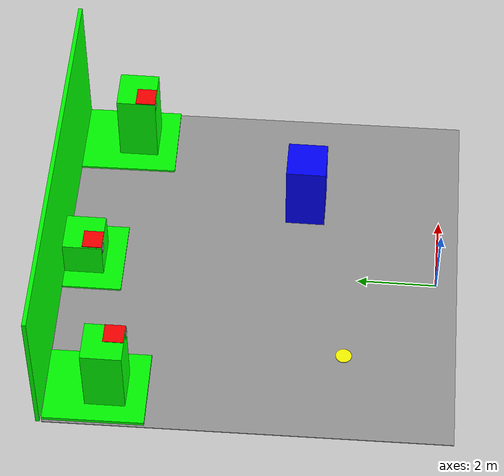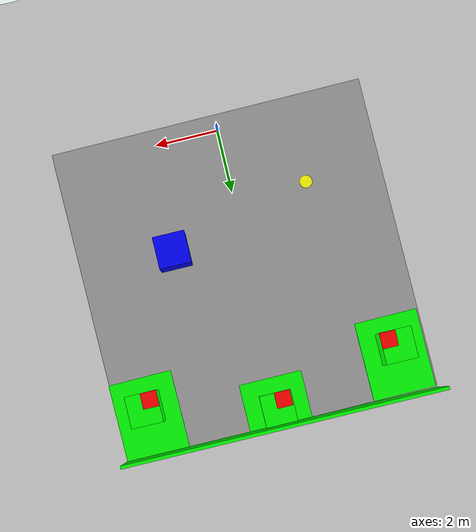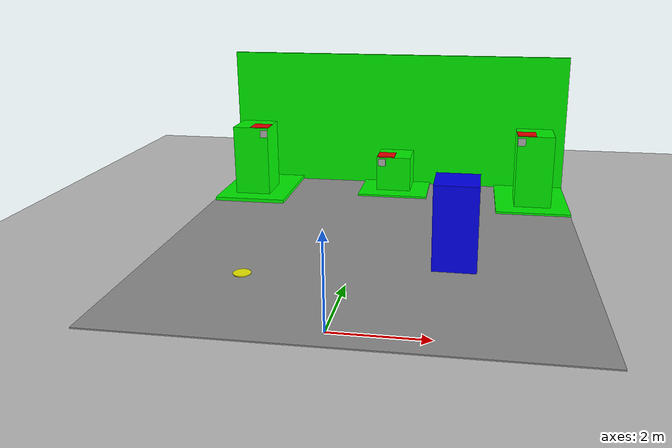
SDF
<sdf version="1.7">
 <world name="default">
  <light name="sun" type="directional">
   <pose>0 0 10 0 -0 0</pose>
   <diffuse>0.8 0.8 0.8 1</diffuse>
   <specular>0.2 0.2 0.2 1</specular>
   <attenuation>
    <range>1000</range>
    <constant>0.9</constant>
    <linear>0.01</linear>
    <quadratic>0.001</quadratic>
   </attenuation>
   <direction>-0.5 0.1 -0.9</direction>
   <spot><inner_angle>0</inner_angle><outer_angle>0</outer_angle><falloff>0</falloff></spot>
  </light>
  <model name="ground_plane">
   <static>1</static>
   <link name="link">
    <collision name="collision">
     <geometry><plane><normal>0 0 1</normal><size>100 100</size></plane></geometry>
     <surface>
      <contact><collide_bitmask>65535</collide_bitmask></contact>
      <friction><ode><mu>100</mu><mu2>50</mu2></ode></friction>
     </surface>
    </collision>
    <visual name="visual">
     <cast_shadows>0</cast_shadows>
     <geometry><plane><normal>0 0 1</normal><size>100 100</size></plane></geometry>
     <material>
      <script><uri>file://media/materials/scripts/gazebo.material</uri><name>Gazebo/Grey</name></script>
     </material>
    </visual>
   </link>
  </model>
  <gravity>0 0 -9.8</gravity>
  <magnetic_field>6e-06 2.3e-05 -4.2e-05</magnetic_field>
  <atmosphere type="adiabatic"/>
  <physics type="ode">
   <max_step_size>0.001</max_step_size>
   <real_time_factor>1</real_time_factor>
   <real_time_update_rate>1000</real_time_update_rate>
  </physics>
  <scene><ambient>0.4 0.4 0.4 1</ambient><background>0.7 0.7 0.7 1</background><shadows>1</shadows></scene>
  <spherical_coordinates>
   <surface_model>EARTH_WGS84</surface_model>
   <latitude_deg>0</latitude_deg>
   <longitude_deg>0</longitude_deg>
   <elevation>0</elevation>
   <heading_deg>0</heading_deg>
  </spherical_coordinates>
  <model name="ABC">
   <link name="link">
    <inertial>
     <mass>1</mass>
     <inertia>
      <ixx>0.166667</ixx>
      <ixy>0</ixy>
      <ixz>0</ixz>
      <iyy>0.166667</iyy>
      <iyz>0</iyz>
      <izz>0.166667</izz>
     </inertia>
    </inertial>
    <pose>0.501756 -0.490715 -0.481377 0 -0 0.009708</pose>
    <gravity>0</gravity>
    <visual name="visual">
     <geometry><box><size>2 2.5 0.1</size></box></geometry>
     <material>
      <script><name>Gazebo/Grey</name><uri>file://media/materials/scripts/gazebo.material</uri></script>
      <shader type="pixel"><normal_map>__default__</normal_map></shader>
      <ambient>0 1 0 1</ambient>
      <diffuse>0 1 0 1</diffuse>
      <specular>0 1 0 1</specular>
      <emissive>0 1 0 1</emissive>
     </material>
    </visual>
   </link>
   <link name="link_clone">
    <inertial>
     <mass>1</mass>
     <inertia>
      <ixx>0.166667</ixx>
      <ixy>0</ixy>
      <ixz>0</ixz>
      <iyy>0.166667</iyy>
      <iyz>0</iyz>
      <izz>0.166667</izz>
     </inertia>
    </inertial>
    <pose>0.464724 -0.746721 0.530209 0 -0 0</pose>
    <gravity>0</gravity>
    <visual name="visual">
     <geometry><box><size>1 1 2</size></box></geometry>
     <material>
      <script><name>Gazebo/Grey</name><uri>file://media/materials/scripts/gazebo.material</uri></script>
      <shader type="pixel"><normal_map>__default__</normal_map></shader>
      <ambient>0 1 0 1</ambient>
      <diffuse>0 1 0 1</diffuse>
      <specular>0 1 0 1</specular>
      <emissive>0 1 0 1</emissive>
     </material>
    </visual>
   </link>
   <link name="link_clone_0">
    <inertial>
     <mass>1</mass>
     <inertia>
      <ixx>0.166667</ixx>
      <ixy>0</ixy>
      <ixz>0</ixz>
      <iyy>0.166667</iyy>
      <iyz>0</iyz>
      <izz>0.166667</izz>
     </inertia>
    </inertial>
    <pose>4.48643 -4.20216 -0.554871 0 -0 0.009708</pose>
    <gravity>0</gravity>
    <visual name="visual">
     <geometry><box><size>10 10 0.05</size></box></geometry>
     <material>
      <script><name>Gazebo/Grey</name><uri>file://media/materials/scripts/gazebo.material</uri></script>
      <shader type="pixel"><normal_map>__default__</normal_map></shader>
      <ambient>0.3 0.3 0.3 1</ambient>
      <diffuse>0.3 0.3 0.3 1</diffuse>
      <specular>0.3 0.3 0.3 1</specular>
      <emissive>0.3 0.3 0.3 1</emissive>
     </material>
    </visual>
   </link>
   <link name="link_clone_clone">
    <inertial>
     <mass>1</mass>
     <inertia>
      <ixx>0.166667</ixx>
      <ixy>0</ixy>
      <ixz>0</ixz>
      <iyy>0.166667</iyy>
      <iyz>0</iyz>
      <izz>0.166667</izz>
     </inertia>
    </inertial>
    <pose>4.4894 0.039701 -0.525972 0 0 -3.13825</pose>
    <gravity>0</gravity>
    <visual name="visual">
     <geometry><box><size>2 1.5 0.1</size></box></geometry>
     <material>
      <script><name>Gazebo/Grey</name><uri>file://media/materials/scripts/gazebo.material</uri></script>
      <shader type="pixel"><normal_map>__default__</normal_map></shader>
      <ambient>0 1 0 1</ambient>
      <diffuse>0 1 0 1</diffuse>
      <specular>0 1 0 1</specular>
      <emissive>0 1 0 1</emissive>
     </material>
    </visual>
   </link>
   <link name="link_clone_clone_0">
    <inertial>
     <mass>1</mass>
     <inertia>
      <ixx>0.166667</ixx>
      <ixy>0</ixy>
      <ixz>0</ixz>
      <iyy>0.166667</iyy>
      <iyz>0</iyz>
      <izz>0.166667</izz>
     </inertia>
    </inertial>
    <pose>8.45528 -0.414778 -0.521977 0 0 -1.55734</pose>
    <gravity>0</gravity>
    <visual name="visual">
     <geometry><box><size>2.5 2 0.1</size></box></geometry>
     <material>
      <script><name>Gazebo/Grey</name><uri>file://media/materials/scripts/gazebo.material</uri></script>
      <shader type="pixel"><normal_map>__default__</normal_map></shader>
      <ambient>0 1 0 1</ambient>
      <diffuse>0 1 0 1</diffuse>
      <specular>0 1 0 1</specular>
      <emissive>0 1 0 1</emissive>
     </material>
    </visual>
   </link>
   <link name="link_clone_clone_1">
    <inertial>
     <mass>1</mass>
     <inertia>
      <ixx>0.166667</ixx>
      <ixy>0</ixy>
      <ixz>0</ixz>
      <iyy>0.166667</iyy>
      <iyz>0</iyz>
      <izz>0.166667</izz>
     </inertia>
    </inertial>
    <pose>4.45058 0.836556 1.43228 0 -0 0</pose>
    <gravity>0</gravity>
    <visual name="visual">
     <geometry><box><size>10 0.1 4</size></box></geometry>
     <material>
      <script><name>Gazebo/Grey</name><uri>file://media/materials/scripts/gazebo.material</uri></script>
      <shader type="pixel"><normal_map>__default__</normal_map></shader>
      <ambient>0 1 0 1</ambient>
      <diffuse>0 1 0 1</diffuse>
      <specular>0 1 0 1</specular>
      <emissive>0 1 0 1</emissive>
     </material>
    </visual>
   </link>
   <link name="link_clone_clone_2">
    <inertial>
     <mass>1</mass>
     <inertia>
      <ixx>0.166667</ixx>
      <ixy>0</ixy>
      <ixz>0</ixz>
      <iyy>0.166667</iyy>
      <iyz>0</iyz>
      <izz>0.166667</izz>
     </inertia>
    </inertial>
    <pose>4.46769 0.278083 0.030316 0 -0 0</pose>
    <gravity>0</gravity>
    <visual name="visual">
     <geometry><box><size>1 1 1</size></box></geometry>
     <material>
      <script><name>Gazebo/Grey</name><uri>file://media/materials/scripts/gazebo.material</uri></script>
      <shader type="pixel"><normal_map>__default__</normal_map></shader>
      <ambient>0 1 0 1</ambient>
      <diffuse>0 1 0 1</diffuse>
      <specular>0 1 0 1</specular>
      <emissive>0 1 0 1</emissive>
     </material>
    </visual>
   </link>
   <link name="link_clone_clone_3">
    <inertial>
     <mass>1</mass>
     <inertia>
      <ixx>0.166667</ixx>
      <ixy>0</ixy>
      <ixz>0</ixz>
      <iyy>0.166667</iyy>
      <iyz>0</iyz>
      <izz>0.166667</izz>
     </inertia>
    </inertial>
    <pose>8.4761 -0.674473 0.530209 0 -0 0</pose>
    <gravity>0</gravity>
    <visual name="visual">
     <geometry><box><size>1 1 2</size></box></geometry>
     <material>
      <script><name>Gazebo/Grey</name><uri>file://media/materials/scripts/gazebo.material</uri></script>
      <shader type="pixel"><normal_map>__default__</normal_map></shader>
      <ambient>0 1 0 1</ambient>
      <diffuse>0 1 0 1</diffuse>
      <specular>0 1 0 1</specular>
      <emissive>0 1 0 1</emissive>
     </material>
    </visual>
   </link>
   <link name="link_clone_clone_4">
    <inertial>
     <mass>1</mass>
     <inertia>
      <ixx>0.166667</ixx>
      <ixy>0</ixy>
      <ixz>0</ixz>
      <iyy>0.166667</iyy>
      <iyz>0</iyz>
      <izz>0.166667</izz>
     </inertia>
    </inertial>
    <pose>8.23375 -0.921291 1.53416 0 -0 0</pose>
    <gravity>0</gravity>
    <visual name="visual">
     <geometry><box><size>0.5 0.5 0.03</size></box></geometry>
     <material>
      <script><name>Gazebo/Grey</name><uri>file://media/materials/scripts/gazebo.material</uri></script>
      <shader type="pixel"><normal_map>__default__</normal_map></shader>
      <ambient>1 0 0 1</ambient>
      <diffuse>1 0 0 1</diffuse>
      <specular>1 0 0 1</specular>
      <emissive>1 0 0 1</emissive>
     </material>
    </visual>
   </link>
   <link name="link_clone_clone_4_clone">
    <inertial>
     <mass>1</mass>
     <inertia>
      <ixx>0.166667</ixx>
      <ixy>0</ixy>
      <ixz>0</ixz>
      <iyy>0.166667</iyy>
      <iyz>0</iyz>
      <izz>0.166667</izz>
     </inertia>
    </inertial>
    <pose>0.7157 -0.988293 1.52576 0 -0 0</pose>
    <gravity>0</gravity>
    <visual name="visual">
     <geometry><box><size>0.5 0.5 0.03</size></box></geometry>
     <material>
      <script><name>Gazebo/Grey</name><uri>file://media/materials/scripts/gazebo.material</uri></script>
      <shader type="pixel"><normal_map>__default__</normal_map></shader>
      <ambient>1 0 0 1</ambient>
      <diffuse>1 0 0 1</diffuse>
      <specular>1 0 0 1</specular>
      <emissive>1 0 0 1</emissive>
     </material>
    </visual>
   </link>
   <link name="link_clone_clone_4_clone_0">
    <inertial>
     <mass>1</mass>
     <inertia>
      <ixx>0.166667</ixx>
      <ixy>0</ixy>
      <ixz>0</ixz>
      <iyy>0.166667</iyy>
      <iyz>0</iyz>
      <izz>0.166667</izz>
     </inertia>
    </inertial>
    <pose>4.24679 0.025765 0.545434 0 -0 0</pose>
    <gravity>0</gravity>
    <visual name="visual">
     <geometry><box><size>0.5 0.5 0.03</size></box></geometry>
     <material>
      <script><name>Gazebo/Grey</name><uri>file://media/materials/scripts/gazebo.material</uri></script>
      <shader type="pixel"><normal_map>__default__</normal_map></shader>
      <ambient>1 0 0 1</ambient>
      <diffuse>1 0 0 1</diffuse>
      <specular>1 0 0 1</specular>
      <emissive>1 0 0 1</emissive>
     </material>
    </visual>
   </link>
   <static>0</static>
   <pose>-4.27249 8.68113 0.540953 0 -0 0</pose>
  </model>
  <model name="Obstacle">
   <link name="link">
    <inertial>
     <mass>1</mass>
     <inertia>
      <ixx>0.166667</ixx>
      <ixy>0</ixy>
      <ixz>0</ixz>
      <iyy>0.166667</iyy>
      <iyz>0</iyz>
      <izz>0.166667</izz>
     </inertia>
    </inertial>
    <pose>0 0 0.499415 0 -0 0</pose>
    <visual name="visual">
     <geometry><box><size>1 1 2</size></box></geometry>
     <material>
      <script><name>Gazebo/Grey</name><uri>file://media/materials/scripts/gazebo.material</uri></script>
      <shader type="pixel"><normal_map>__default__</normal_map></shader>
      <ambient>0 0 1 1</ambient>
      <diffuse>0 0 1 1</diffuse>
      <specular>0 0 1 1</specular>
      <emissive>0 0 1 1</emissive>
     </material>
    </visual>
    <collision name="collision">
     <geometry><box><size>1 1 2</size></box></geometry>
     <surface>
      <friction>
       <ode><mu>1</mu><mu2>1</mu2><fdir1>0 0 0</fdir1><slip1>0</slip1><slip2>0</slip2></ode>
       <torsional>
        <coefficient>1</coefficient>
        <patch_radius>0</patch_radius>
        <surface_radius>0</surface_radius>
        <use_patch_radius>1</use_patch_radius>
        <ode><slip>0</slip></ode>
       </torsional>
      </friction>
      <bounce><restitution_coefficient>0</restitution_coefficient><threshold>1e+06</threshold></bounce>
      <contact>
       <collide_without_contact>0</collide_without_contact>
       <collide_without_contact_bitmask>1</collide_without_contact_bitmask>
       <collide_bitmask>1</collide_bitmask>
       <ode>
        <soft_cfm>0</soft_cfm>
        <soft_erp>0.2</soft_erp>
        <kp>1e+13</kp>
        <kd>1</kd>
        <max_vel>0.01</max_vel>
        <min_depth>0</min_depth>
       </ode>
       <bullet>
        <split_impulse>1</split_impulse>
        <split_impulse_penetration_threshold>-0.01</split_impulse_penetration_threshold>
        <soft_cfm>0</soft_cfm>
        <soft_erp>0.2</soft_erp>
        <kp>1e+13</kp>
        <kd>1</kd>
       </bullet>
      </contact>
     </surface>
    </collision>
   </link>
   <static>0</static>
   <pose>2.24094 3.45872 0.500582 3e-06 2e-06 -0.000153</pose>
  </model>
  <model name="ELP">
   <link name="link">
    <inertial>
     <mass>1</mass>
     <inertia><ixx>0.145833</ixx><ixy>0</ixy><ixz>0</ixz><iyy>0.145833</iyy><iyz>0</iyz><izz>0.125</izz></inertia>
    </inertial>
    <pose>0.116894 -0.039637 -0.47738 0 -0 0</pose>
    <visual name="visual">
     <geometry><cylinder><radius>0.2</radius><length>0.03</length></cylinder></geometry>
     <material>
      <script><name>Gazebo/Grey</name><uri>file://media/materials/scripts/gazebo.material</uri></script>
      <shader type="pixel"><normal_map>__default__</normal_map></shader>
      <ambient>1 1 0 1</ambient>
      <diffuse>1 1 0 1</diffuse>
      <specular>1 1 0 1</specular>
      <emissive>1 1 0 1</emissive>
     </material>
    </visual>
    <collision name="collision">
     <geometry><cylinder><radius>0.2</radius><length>0.03</length></cylinder></geometry>
     <surface>
      <friction>
       <ode><mu>1</mu><mu2>1</mu2><fdir1>0 0 0</fdir1><slip1>0</slip1><slip2>0</slip2></ode>
       <torsional>
        <coefficient>1</coefficient>
        <patch_radius>0</patch_radius>
        <surface_radius>0</surface_radius>
        <use_patch_radius>1</use_patch_radius>
        <ode><slip>0</slip></ode>
       </torsional>
      </friction>
      <bounce><restitution_coefficient>0</restitution_coefficient><threshold>1e+06</threshold></bounce>
      <contact>
       <collide_without_contact>0</collide_without_contact>
       <collide_without_contact_bitmask>1</collide_without_contact_bitmask>
       <collide_bitmask>1</collide_bitmask>
       <ode>
        <soft_cfm>0</soft_cfm>
        <soft_erp>0.2</soft_erp>
        <kp>1e+13</kp>
        <kd>1</kd>
        <max_vel>0.01</max_vel>
        <min_depth>0</min_depth>
       </ode>
       <bullet>
        <split_impulse>1</split_impulse>
        <split_impulse_penetration_threshold>-0.01</split_impulse_penetration_threshold>
        <soft_cfm>0</soft_cfm>
        <soft_erp>0.2</soft_erp>
        <kp>1e+13</kp>
        <kd>1</kd>
       </bullet>
      </contact>
     </surface>
    </collision>
   </link>
   <static>0</static>
   <pose>-2.46314 2.26178 0.492379 0 -0 0</pose>
  </model>
  <model name="VTOL1">
   <link name="link">
    <inertial>
     <mass>1</mass>
     <inertia>
      <ixx>0.166667</ixx>
      <ixy>0</ixy>
      <ixz>0</ixz>
      <iyy>0.166667</iyy>
      <iyz>0</iyz>
      <izz>0.166667</izz>
     </inertia>
    </inertial>
    <pose>0.309741 1.35591 1.4279 0 -0 0</pose>
    <gravity>0</gravity>
    <visual name="visual">
     <geometry><box><size>0.21 0.01 0.21</size></box></geometry>
     <material>
      <script><uri>model://VTOL1/materials/scripts/model.material</uri><name>Texture1</name></script>
     </material>
    </visual>
   </link>
   <static>0</static>
   <pose>-3.71921 6.07366 0.47175 0 -0 0</pose>
  </model>
  <model name="VTOL2">
   <link name="link">
    <inertial>
     <mass>1</mass>
     <inertia>
      <ixx>0.166667</ixx>
      <ixy>0</ixy>
      <ixz>0</ixz>
      <iyy>0.166667</iyy>
      <iyz>0</iyz>
      <izz>0.166667</izz>
     </inertia>
    </inertial>
    <pose>0.309741 1.35591 1.4279 0 -0 0</pose>
    <gravity>0</gravity>
    <visual name="visual">
     <geometry><box><size>0.21 0.01 0.21</size></box></geometry>
     <material>
      <script><uri>model://VTOL2/materials/scripts/model.material</uri><name>Texture2</name></script>
     </material>
    </visual>
   </link>
   <static>0</static>
   <pose>-0.454879 7.09645 -0.510195 0 -0 0</pose>
  </model>
  <model name="VTOL3">
   <link name="link">
    <inertial>
     <mass>1</mass>
     <inertia>
      <ixx>0.166667</ixx>
      <ixy>0</ixy>
      <ixz>0</ixz>
      <iyy>0.166667</iyy>
      <iyz>0</iyz>
      <izz>0.166667</izz>
     </inertia>
    </inertial>
    <pose>0.309741 1.35591 1.4279 0 -0 0</pose>
    <gravity>0</gravity>
    <visual name="visual">
     <geometry><box><size>0.21 0.01 0.21</size></box></geometry>
     <material>
      <script><uri>model://VTOL3/materials/scripts/model.material</uri><name>Texture3</name></script>
     </material>
    </visual>
   </link>
   <static>0</static>
   <pose>3.51305 6.14941 0.48376 0 -0 0</pose>
  </model>
 </world>
</sdf>
